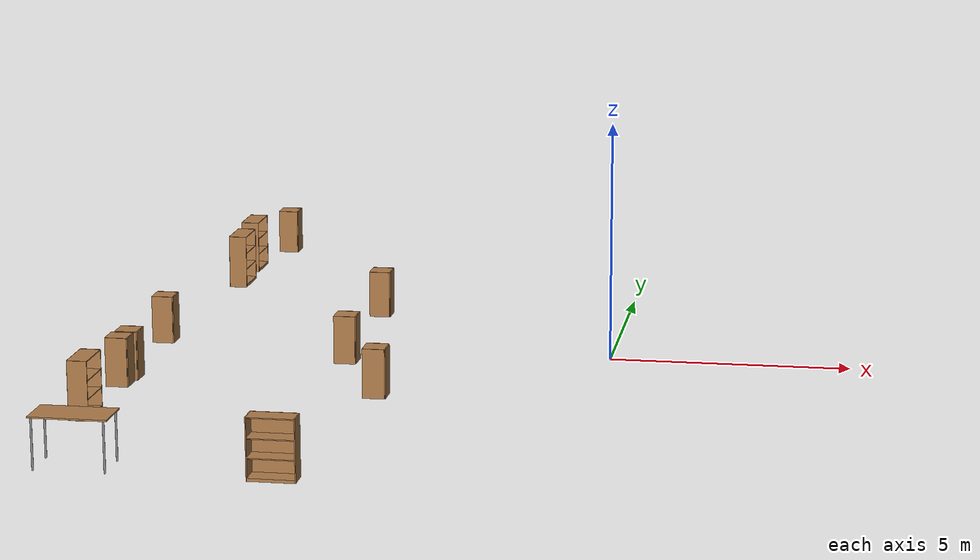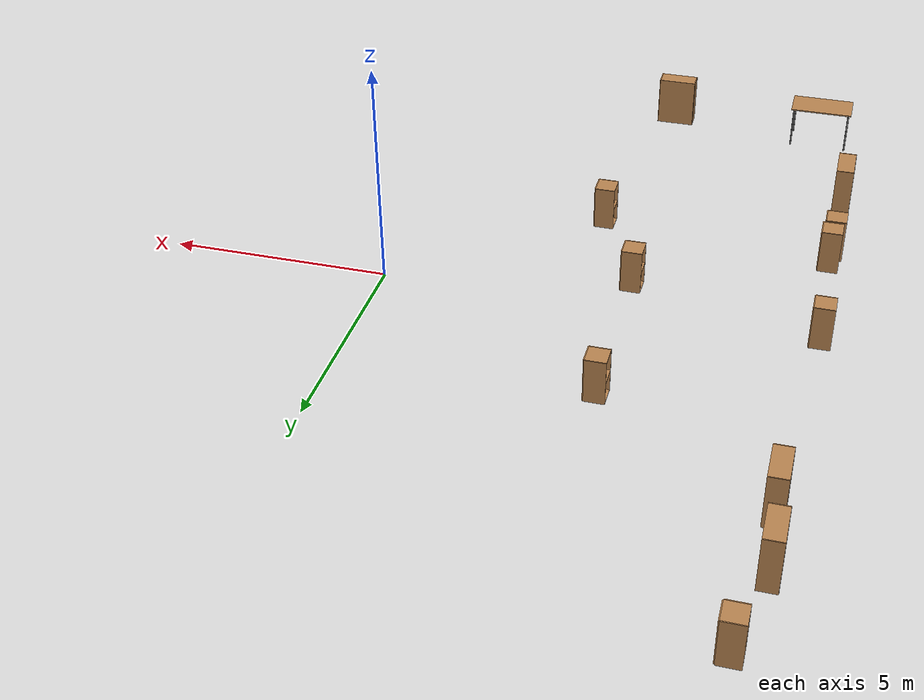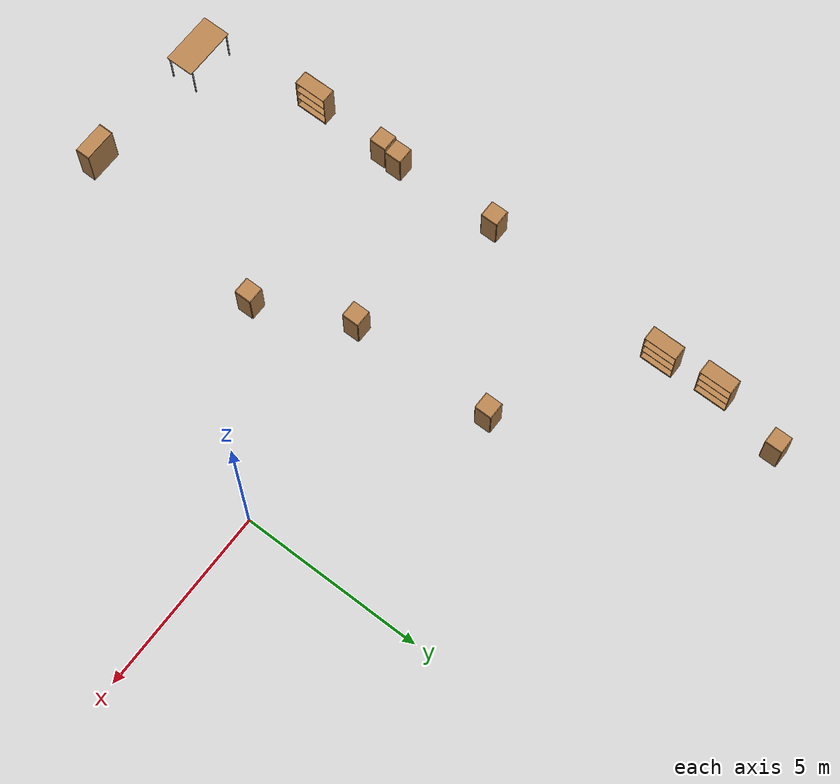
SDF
<sdf version="1.4">
 <world name="prepare">
  <model name="cabinet">
   <static>1</static>
   <link name="cabinet_bottom_plate">
    <inertial>
     <pose>0 0 -1 0 -0 0</pose>
     <inertia><ixx>2.05</ixx><ixy>0</ixy><ixz>0</ixz><iyy>2.05</iyy><iyz>0</iyz><izz>2.05</izz></inertia>
     <mass>25</mass>
    </inertial>
    <collision name="cabinet_bottom_plate_geom">
     <pose>0 0 0.01 0 -0 0</pose>
     <geometry><box><size>0.45 0.45 0.02</size></box></geometry>
    </collision>
    <visual name="cabinet_bottom_plate_geom_visual">
     <pose>0 0 0.01 0 -0 0</pose>
     <geometry><box><size>0.45 0.45 0.02</size></box></geometry>
     <material>
      <script><uri>file://media/materials/scripts/gazebo.material</uri><name>Gazebo/Wood</name></script>
     </material>
    </visual>
    <collision name="cabinet_bottom_plate_geom_cabinet_back_plate">
     <pose>0.235 0 0.51 0 -0 0</pose>
     <geometry><box><size>0.02 0.45 1.02</size></box></geometry>
    </collision>
    <visual name="cabinet_bottom_plate_geom_cabinet_back_plate_visual">
     <pose>0.235 0 0.51 0 -0 0</pose>
     <geometry><box><size>0.02 0.45 1.02</size></box></geometry>
     <material>
      <script><uri>file://media/materials/scripts/gazebo.material</uri><name>Gazebo/Wood</name></script>
     </material>
    </visual>
    <collision name="cabinet_bottom_plate_geom_cabinet_left_plate">
     <pose>0 0.235 0.51 0 -0 0</pose>
     <geometry><box><size>0.45 0.02 1.02</size></box></geometry>
    </collision>
    <visual name="cabinet_bottom_plate_geom_cabinet_left_plate_visual">
     <pose>0 0.235 0.51 0 -0 0</pose>
     <geometry><box><size>0.45 0.02 1.02</size></box></geometry>
     <material>
      <script><uri>file://media/materials/scripts/gazebo.material</uri><name>Gazebo/Wood</name></script>
     </material>
    </visual>
    <collision name="cabinet_bottom_plate_geom_cabinet_middle_plate">
     <pose>0 0 0.51 0 -0 0</pose>
     <geometry><box><size>0.45 0.45 0.02</size></box></geometry>
    </collision>
    <visual name="cabinet_bottom_plate_geom_cabinet_middle_plate_visual">
     <pose>0 0 0.51 0 -0 0</pose>
     <geometry><box><size>0.45 0.45 0.02</size></box></geometry>
     <material>
      <script><uri>file://media/materials/scripts/gazebo.material</uri><name>Gazebo/Wood</name></script>
     </material>
    </visual>
    <collision name="cabinet_bottom_plate_geom_cabinet_right_plate">
     <pose>0 -0.235 0.51 0 -0 0</pose>
     <geometry><box><size>0.45 0.02 1.02</size></box></geometry>
    </collision>
    <visual name="cabinet_bottom_plate_geom_cabinet_right_plate_visual">
     <pose>0 -0.235 0.51 0 -0 0</pose>
     <geometry><box><size>0.45 0.02 1.02</size></box></geometry>
     <material>
      <script><uri>file://media/materials/scripts/gazebo.material</uri><name>Gazebo/Wood</name></script>
     </material>
    </visual>
    <collision name="cabinet_bottom_plate_geom_cabinet_top_plate">
     <pose>0 0 1.01 0 -0 0</pose>
     <geometry><box><size>0.45 0.45 0.02</size></box></geometry>
    </collision>
    <visual name="cabinet_bottom_plate_geom_cabinet_top_plate_visual">
     <pose>0 0 1.01 0 -0 0</pose>
     <geometry><box><size>0.45 0.45 0.02</size></box></geometry>
     <material>
      <script><uri>file://media/materials/scripts/gazebo.material</uri><name>Gazebo/Wood</name></script>
     </material>
    </visual>
    <velocity_decay><linear>0</linear><angular>0</angular></velocity_decay>
   </link>
   <pose>-4.33134 -3.46856 0 0 -0 0</pose>
  </model>
  <model name="cabinet_2">
   <static>1</static>
   <link name="cabinet_bottom_plate">
    <inertial>
     <pose>0 0 -1 0 -0 0</pose>
     <inertia><ixx>2.05</ixx><ixy>0</ixy><ixz>0</ixz><iyy>2.05</iyy><iyz>0</iyz><izz>2.05</izz></inertia>
     <mass>25</mass>
    </inertial>
    <collision name="cabinet_bottom_plate_geom">
     <pose>0 0 0.01 0 -0 0</pose>
     <geometry><box><size>0.45 0.45 0.02</size></box></geometry>
    </collision>
    <visual name="cabinet_bottom_plate_geom_visual">
     <pose>0 0 0.01 0 -0 0</pose>
     <geometry><box><size>0.45 0.45 0.02</size></box></geometry>
     <material>
      <script><uri>file://media/materials/scripts/gazebo.material</uri><name>Gazebo/Wood</name></script>
     </material>
    </visual>
    <collision name="cabinet_bottom_plate_geom_cabinet_back_plate">
     <pose>0.235 0 0.51 0 -0 0</pose>
     <geometry><box><size>0.02 0.45 1.02</size></box></geometry>
    </collision>
    <visual name="cabinet_bottom_plate_geom_cabinet_back_plate_visual">
     <pose>0.235 0 0.51 0 -0 0</pose>
     <geometry><box><size>0.02 0.45 1.02</size></box></geometry>
     <material>
      <script><uri>file://media/materials/scripts/gazebo.material</uri><name>Gazebo/Wood</name></script>
     </material>
    </visual>
    <collision name="cabinet_bottom_plate_geom_cabinet_left_plate">
     <pose>0 0.235 0.51 0 -0 0</pose>
     <geometry><box><size>0.45 0.02 1.02</size></box></geometry>
    </collision>
    <visual name="cabinet_bottom_plate_geom_cabinet_left_plate_visual">
     <pose>0 0.235 0.51 0 -0 0</pose>
     <geometry><box><size>0.45 0.02 1.02</size></box></geometry>
     <material>
      <script><uri>file://media/materials/scripts/gazebo.material</uri><name>Gazebo/Wood</name></script>
     </material>
    </visual>
    <collision name="cabinet_bottom_plate_geom_cabinet_middle_plate">
     <pose>0 0 0.51 0 -0 0</pose>
     <geometry><box><size>0.45 0.45 0.02</size></box></geometry>
    </collision>
    <visual name="cabinet_bottom_plate_geom_cabinet_middle_plate_visual">
     <pose>0 0 0.51 0 -0 0</pose>
     <geometry><box><size>0.45 0.45 0.02</size></box></geometry>
     <material>
      <script><uri>file://media/materials/scripts/gazebo.material</uri><name>Gazebo/Wood</name></script>
     </material>
    </visual>
    <collision name="cabinet_bottom_plate_geom_cabinet_right_plate">
     <pose>0 -0.235 0.51 0 -0 0</pose>
     <geometry><box><size>0.45 0.02 1.02</size></box></geometry>
    </collision>
    <visual name="cabinet_bottom_plate_geom_cabinet_right_plate_visual">
     <pose>0 -0.235 0.51 0 -0 0</pose>
     <geometry><box><size>0.45 0.02 1.02</size></box></geometry>
     <material>
      <script><uri>file://media/materials/scripts/gazebo.material</uri><name>Gazebo/Wood</name></script>
     </material>
    </visual>
    <collision name="cabinet_bottom_plate_geom_cabinet_top_plate">
     <pose>0 0 1.01 0 -0 0</pose>
     <geometry><box><size>0.45 0.45 0.02</size></box></geometry>
    </collision>
    <visual name="cabinet_bottom_plate_geom_cabinet_top_plate_visual">
     <pose>0 0 1.01 0 -0 0</pose>
     <geometry><box><size>0.45 0.45 0.02</size></box></geometry>
     <material>
      <script><uri>file://media/materials/scripts/gazebo.material</uri><name>Gazebo/Wood</name></script>
     </material>
    </visual>
    <velocity_decay><linear>0</linear><angular>0</angular></velocity_decay>
   </link>
   <pose>-9 9 0 0 -0 0</pose>
  </model>
  <model name="table">
   <static>1</static>
   <link name="link">
    <collision name="surface">
     <pose>0 0 1 0 -0 0</pose>
     <geometry><box><size>1.5 0.8 0.03</size></box></geometry>
    </collision>
    <visual name="visual1">
     <pose>0 0 1 0 -0 0</pose>
     <geometry><box><size>1.5 0.8 0.03</size></box></geometry>
     <material>
      <script><uri>file://media/materials/scripts/gazebo.material</uri><name>Gazebo/Wood</name></script>
     </material>
    </visual>
    <collision name="front_left_leg">
     <pose>0.68 0.38 0.5 0 -0 0</pose>
     <geometry><cylinder><radius>0.02</radius><length>1</length></cylinder></geometry>
    </collision>
    <visual name="front_left_leg">
     <pose>0.68 0.38 0.5 0 -0 0</pose>
     <geometry><cylinder><radius>0.02</radius><length>1</length></cylinder></geometry>
     <material>
      <script><uri>file://media/materials/scripts/gazebo.material</uri><name>Gazebo/Grey</name></script>
     </material>
    </visual>
    <collision name="front_right_leg">
     <pose>0.68 -0.38 0.5 0 -0 0</pose>
     <geometry><cylinder><radius>0.02</radius><length>1</length></cylinder></geometry>
    </collision>
    <visual name="front_right_leg">
     <pose>0.68 -0.38 0.5 0 -0 0</pose>
     <geometry><cylinder><radius>0.02</radius><length>1</length></cylinder></geometry>
     <material>
      <script><uri>file://media/materials/scripts/gazebo.material</uri><name>Gazebo/Grey</name></script>
     </material>
    </visual>
    <collision name="back_right_leg">
     <pose>-0.68 -0.38 0.5 0 -0 0</pose>
     <geometry><cylinder><radius>0.02</radius><length>1</length></cylinder></geometry>
    </collision>
    <visual name="back_right_leg">
     <pose>-0.68 -0.38 0.5 0 -0 0</pose>
     <geometry><cylinder><radius>0.02</radius><length>1</length></cylinder></geometry>
     <material>
      <script><uri>file://media/materials/scripts/gazebo.material</uri><name>Gazebo/Grey</name></script>
     </material>
    </visual>
    <collision name="back_left_leg">
     <pose>-0.68 0.38 0.5 0 -0 0</pose>
     <geometry><cylinder><radius>0.02</radius><length>1</length></cylinder></geometry>
    </collision>
    <visual name="back_left_leg">
     <pose>-0.68 0.38 0.5 0 -0 0</pose>
     <geometry><cylinder><radius>0.02</radius><length>1</length></cylinder></geometry>
     <material>
      <script><uri>file://media/materials/scripts/gazebo.material</uri><name>Gazebo/Grey</name></script>
     </material>
    </visual>
    <velocity_decay><linear>0</linear><angular>0</angular></velocity_decay>
   </link>
   <pose>-8.84488 -8.84481 0 0 -0 0</pose>
  </model>
  <model name="bookshelf_4">
   <static>1</static>
   <link name="link">
    <inertial><mass>1</mass></inertial>
    <collision name="back">
     <pose>0 0.005 0.6 0 -0 0</pose>
     <geometry><box><size>0.9 0.01 1.2</size></box></geometry>
    </collision>
    <visual name="visual1">
     <pose>0 0.005 0.6 0 -0 0</pose>
     <geometry><box><size>0.9 0.01 1.2</size></box></geometry>
     <material>
      <script><uri>file://media/materials/scripts/gazebo.material</uri><name>Gazebo/Wood</name></script>
     </material>
    </visual>
    <collision name="left_side">
     <pose>0.45 -0.195 0.6 0 -0 0</pose>
     <geometry><box><size>0.02 0.4 1.2</size></box></geometry>
    </collision>
    <visual name="visual2">
     <pose>0.45 -0.195 0.6 0 -0 0</pose>
     <geometry><box><size>0.02 0.4 1.2</size></box></geometry>
     <material>
      <script><uri>file://media/materials/scripts/gazebo.material</uri><name>Gazebo/Wood</name></script>
     </material>
    </visual>
    <collision name="right_side">
     <pose>-0.45 -0.195 0.6 0 -0 0</pose>
     <geometry><box><size>0.02 0.4 1.2</size></box></geometry>
    </collision>
    <visual name="visual3">
     <pose>-0.45 -0.195 0.6 0 -0 0</pose>
     <geometry><box><size>0.02 0.4 1.2</size></box></geometry>
     <material>
      <script><uri>file://media/materials/scripts/gazebo.material</uri><name>Gazebo/Wood</name></script>
     </material>
    </visual>
    <collision name="bottom">
     <pose>0 -0.195 0.03 0 -0 0</pose>
     <geometry><box><size>0.88 0.4 0.06</size></box></geometry>
    </collision>
    <visual name="visual4">
     <pose>0 -0.195 0.03 0 -0 0</pose>
     <geometry><box><size>0.88 0.4 0.06</size></box></geometry>
     <material>
      <script><uri>file://media/materials/scripts/gazebo.material</uri><name>Gazebo/Wood</name></script>
     </material>
    </visual>
    <collision name="top">
     <pose>0 -0.195 1.19 0 -0 0</pose>
     <geometry><box><size>0.88 0.4 0.02</size></box></geometry>
    </collision>
    <visual name="visual5">
     <pose>0 -0.195 1.19 0 -0 0</pose>
     <geometry><box><size>0.88 0.4 0.02</size></box></geometry>
     <material>
      <script><uri>file://media/materials/scripts/gazebo.material</uri><name>Gazebo/Wood</name></script>
     </material>
    </visual>
    <collision name="low_shelf">
     <pose>0 -0.195 0.43 0 -0 0</pose>
     <geometry><box><size>0.88 0.4 0.02</size></box></geometry>
    </collision>
    <visual name="visual6">
     <pose>0 -0.195 0.43 0 -0 0</pose>
     <geometry><box><size>0.88 0.4 0.02</size></box></geometry>
     <material>
      <script><uri>file://media/materials/scripts/gazebo.material</uri><name>Gazebo/Wood</name></script>
     </material>
    </visual>
    <collision name="high_shelf">
     <pose>0 -0.195 0.8 0 -0 0</pose>
     <geometry><box><size>0.88 0.4 0.02</size></box></geometry>
    </collision>
    <visual name="visual7">
     <pose>0 -0.195 0.8 0 -0 0</pose>
     <geometry><box><size>0.88 0.4 0.02</size></box></geometry>
     <material>
      <script><uri>file://media/materials/scripts/gazebo.material</uri><name>Gazebo/Wood</name></script>
     </material>
    </visual>
    <velocity_decay><linear>0</linear><angular>0</angular></velocity_decay>
   </link>
   <pose>-5.07565 -8.87222 0 0 -0 0</pose>
  </model>
  <model name="bookshelf_6">
   <static>1</static>
   <link name="link">
    <inertial><mass>1</mass></inertial>
    <collision name="back">
     <pose>0 0.005 0.6 0 -0 0</pose>
     <geometry><box><size>0.9 0.01 1.2</size></box></geometry>
    </collision>
    <visual name="visual1">
     <pose>0 0.005 0.6 0 -0 0</pose>
     <geometry><box><size>0.9 0.01 1.2</size></box></geometry>
     <material>
      <script><uri>file://media/materials/scripts/gazebo.material</uri><name>Gazebo/Wood</name></script>
     </material>
    </visual>
    <collision name="left_side">
     <pose>0.45 -0.195 0.6 0 -0 0</pose>
     <geometry><box><size>0.02 0.4 1.2</size></box></geometry>
    </collision>
    <visual name="visual2">
     <pose>0.45 -0.195 0.6 0 -0 0</pose>
     <geometry><box><size>0.02 0.4 1.2</size></box></geometry>
     <material>
      <script><uri>file://media/materials/scripts/gazebo.material</uri><name>Gazebo/Wood</name></script>
     </material>
    </visual>
    <collision name="right_side">
     <pose>-0.45 -0.195 0.6 0 -0 0</pose>
     <geometry><box><size>0.02 0.4 1.2</size></box></geometry>
    </collision>
    <visual name="visual3">
     <pose>-0.45 -0.195 0.6 0 -0 0</pose>
     <geometry><box><size>0.02 0.4 1.2</size></box></geometry>
     <material>
      <script><uri>file://media/materials/scripts/gazebo.material</uri><name>Gazebo/Wood</name></script>
     </material>
    </visual>
    <collision name="bottom">
     <pose>0 -0.195 0.03 0 -0 0</pose>
     <geometry><box><size>0.88 0.4 0.06</size></box></geometry>
    </collision>
    <visual name="visual4">
     <pose>0 -0.195 0.03 0 -0 0</pose>
     <geometry><box><size>0.88 0.4 0.06</size></box></geometry>
     <material>
      <script><uri>file://media/materials/scripts/gazebo.material</uri><name>Gazebo/Wood</name></script>
     </material>
    </visual>
    <collision name="top">
     <pose>0 -0.195 1.19 0 -0 0</pose>
     <geometry><box><size>0.88 0.4 0.02</size></box></geometry>
    </collision>
    <visual name="visual5">
     <pose>0 -0.195 1.19 0 -0 0</pose>
     <geometry><box><size>0.88 0.4 0.02</size></box></geometry>
     <material>
      <script><uri>file://media/materials/scripts/gazebo.material</uri><name>Gazebo/Wood</name></script>
     </material>
    </visual>
    <collision name="low_shelf">
     <pose>0 -0.195 0.43 0 -0 0</pose>
     <geometry><box><size>0.88 0.4 0.02</size></box></geometry>
    </collision>
    <visual name="visual6">
     <pose>0 -0.195 0.43 0 -0 0</pose>
     <geometry><box><size>0.88 0.4 0.02</size></box></geometry>
     <material>
      <script><uri>file://media/materials/scripts/gazebo.material</uri><name>Gazebo/Wood</name></script>
     </material>
    </visual>
    <collision name="high_shelf">
     <pose>0 -0.195 0.8 0 -0 0</pose>
     <geometry><box><size>0.88 0.4 0.02</size></box></geometry>
    </collision>
    <visual name="visual7">
     <pose>0 -0.195 0.8 0 -0 0</pose>
     <geometry><box><size>0.88 0.4 0.02</size></box></geometry>
     <material>
      <script><uri>file://media/materials/scripts/gazebo.material</uri><name>Gazebo/Wood</name></script>
     </material>
    </visual>
    <velocity_decay><linear>0</linear><angular>0</angular></velocity_decay>
   </link>
   <pose>-9.59988 7 0 0 -0 1.5708</pose>
  </model>
  <model name="bookshelf_7">
   <static>1</static>
   <link name="link">
    <inertial><mass>1</mass></inertial>
    <collision name="back">
     <pose>0 0.005 0.6 0 -0 0</pose>
     <geometry><box><size>0.9 0.01 1.2</size></box></geometry>
    </collision>
    <visual name="visual1">
     <pose>0 0.005 0.6 0 -0 0</pose>
     <geometry><box><size>0.9 0.01 1.2</size></box></geometry>
     <material>
      <script><uri>file://media/materials/scripts/gazebo.material</uri><name>Gazebo/Wood</name></script>
     </material>
    </visual>
    <collision name="left_side">
     <pose>0.45 -0.195 0.6 0 -0 0</pose>
     <geometry><box><size>0.02 0.4 1.2</size></box></geometry>
    </collision>
    <visual name="visual2">
     <pose>0.45 -0.195 0.6 0 -0 0</pose>
     <geometry><box><size>0.02 0.4 1.2</size></box></geometry>
     <material>
      <script><uri>file://media/materials/scripts/gazebo.material</uri><name>Gazebo/Wood</name></script>
     </material>
    </visual>
    <collision name="right_side">
     <pose>-0.45 -0.195 0.6 0 -0 0</pose>
     <geometry><box><size>0.02 0.4 1.2</size></box></geometry>
    </collision>
    <visual name="visual3">
     <pose>-0.45 -0.195 0.6 0 -0 0</pose>
     <geometry><box><size>0.02 0.4 1.2</size></box></geometry>
     <material>
      <script><uri>file://media/materials/scripts/gazebo.material</uri><name>Gazebo/Wood</name></script>
     </material>
    </visual>
    <collision name="bottom">
     <pose>0 -0.195 0.03 0 -0 0</pose>
     <geometry><box><size>0.88 0.4 0.06</size></box></geometry>
    </collision>
    <visual name="visual4">
     <pose>0 -0.195 0.03 0 -0 0</pose>
     <geometry><box><size>0.88 0.4 0.06</size></box></geometry>
     <material>
      <script><uri>file://media/materials/scripts/gazebo.material</uri><name>Gazebo/Wood</name></script>
     </material>
    </visual>
    <collision name="top">
     <pose>0 -0.195 1.19 0 -0 0</pose>
     <geometry><box><size>0.88 0.4 0.02</size></box></geometry>
    </collision>
    <visual name="visual5">
     <pose>0 -0.195 1.19 0 -0 0</pose>
     <geometry><box><size>0.88 0.4 0.02</size></box></geometry>
     <material>
      <script><uri>file://media/materials/scripts/gazebo.material</uri><name>Gazebo/Wood</name></script>
     </material>
    </visual>
    <collision name="low_shelf">
     <pose>0 -0.195 0.43 0 -0 0</pose>
     <geometry><box><size>0.88 0.4 0.02</size></box></geometry>
    </collision>
    <visual name="visual6">
     <pose>0 -0.195 0.43 0 -0 0</pose>
     <geometry><box><size>0.88 0.4 0.02</size></box></geometry>
     <material>
      <script><uri>file://media/materials/scripts/gazebo.material</uri><name>Gazebo/Wood</name></script>
     </material>
    </visual>
    <collision name="high_shelf">
     <pose>0 -0.195 0.8 0 -0 0</pose>
     <geometry><box><size>0.88 0.4 0.02</size></box></geometry>
    </collision>
    <visual name="visual7">
     <pose>0 -0.195 0.8 0 -0 0</pose>
     <geometry><box><size>0.88 0.4 0.02</size></box></geometry>
     <material>
      <script><uri>file://media/materials/scripts/gazebo.material</uri><name>Gazebo/Wood</name></script>
     </material>
    </visual>
    <velocity_decay><linear>0</linear><angular>0</angular></velocity_decay>
   </link>
   <pose>-9.50921 5.4476 0 0 -0 1.5708</pose>
  </model>
  <model name="bookshelf_8">
   <static>1</static>
   <link name="link">
    <inertial><mass>1</mass></inertial>
    <collision name="back">
     <pose>0 0.005 0.6 0 -0 0</pose>
     <geometry><box><size>0.9 0.01 1.2</size></box></geometry>
    </collision>
    <visual name="visual1">
     <pose>0 0.005 0.6 0 -0 0</pose>
     <geometry><box><size>0.9 0.01 1.2</size></box></geometry>
     <material>
      <script><uri>file://media/materials/scripts/gazebo.material</uri><name>Gazebo/Wood</name></script>
     </material>
    </visual>
    <collision name="left_side">
     <pose>0.45 -0.195 0.6 0 -0 0</pose>
     <geometry><box><size>0.02 0.4 1.2</size></box></geometry>
    </collision>
    <visual name="visual2">
     <pose>0.45 -0.195 0.6 0 -0 0</pose>
     <geometry><box><size>0.02 0.4 1.2</size></box></geometry>
     <material>
      <script><uri>file://media/materials/scripts/gazebo.material</uri><name>Gazebo/Wood</name></script>
     </material>
    </visual>
    <collision name="right_side">
     <pose>-0.45 -0.195 0.6 0 -0 0</pose>
     <geometry><box><size>0.02 0.4 1.2</size></box></geometry>
    </collision>
    <visual name="visual3">
     <pose>-0.45 -0.195 0.6 0 -0 0</pose>
     <geometry><box><size>0.02 0.4 1.2</size></box></geometry>
     <material>
      <script><uri>file://media/materials/scripts/gazebo.material</uri><name>Gazebo/Wood</name></script>
     </material>
    </visual>
    <collision name="bottom">
     <pose>0 -0.195 0.03 0 -0 0</pose>
     <geometry><box><size>0.88 0.4 0.06</size></box></geometry>
    </collision>
    <visual name="visual4">
     <pose>0 -0.195 0.03 0 -0 0</pose>
     <geometry><box><size>0.88 0.4 0.06</size></box></geometry>
     <material>
      <script><uri>file://media/materials/scripts/gazebo.material</uri><name>Gazebo/Wood</name></script>
     </material>
    </visual>
    <collision name="top">
     <pose>0 -0.195 1.19 0 -0 0</pose>
     <geometry><box><size>0.88 0.4 0.02</size></box></geometry>
    </collision>
    <visual name="visual5">
     <pose>0 -0.195 1.19 0 -0 0</pose>
     <geometry><box><size>0.88 0.4 0.02</size></box></geometry>
     <material>
      <script><uri>file://media/materials/scripts/gazebo.material</uri><name>Gazebo/Wood</name></script>
     </material>
    </visual>
    <collision name="low_shelf">
     <pose>0 -0.195 0.43 0 -0 0</pose>
     <geometry><box><size>0.88 0.4 0.02</size></box></geometry>
    </collision>
    <visual name="visual6">
     <pose>0 -0.195 0.43 0 -0 0</pose>
     <geometry><box><size>0.88 0.4 0.02</size></box></geometry>
     <material>
      <script><uri>file://media/materials/scripts/gazebo.material</uri><name>Gazebo/Wood</name></script>
     </material>
    </visual>
    <collision name="high_shelf">
     <pose>0 -0.195 0.8 0 -0 0</pose>
     <geometry><box><size>0.88 0.4 0.02</size></box></geometry>
    </collision>
    <visual name="visual7">
     <pose>0 -0.195 0.8 0 -0 0</pose>
     <geometry><box><size>0.88 0.4 0.02</size></box></geometry>
     <material>
      <script><uri>file://media/materials/scripts/gazebo.material</uri><name>Gazebo/Wood</name></script>
     </material>
    </visual>
    <velocity_decay><linear>0</linear><angular>0</angular></velocity_decay>
   </link>
   <pose>-9.85376 -5.64821 0 0 -0 1.5708</pose>
  </model>
  <model name="cabinet_9">
   <static>1</static>
   <link name="cabinet_bottom_plate">
    <inertial>
     <pose>0 0 -1 0 -0 0</pose>
     <inertia><ixx>2.05</ixx><ixy>0</ixy><ixz>0</ixz><iyy>2.05</iyy><iyz>0</iyz><izz>2.05</izz></inertia>
     <mass>25</mass>
    </inertial>
    <collision name="cabinet_bottom_plate_geom">
     <pose>0 0 0.01 0 -0 0</pose>
     <geometry><box><size>0.45 0.45 0.02</size></box></geometry>
    </collision>
    <visual name="cabinet_bottom_plate_geom_visual">
     <pose>0 0 0.01 0 -0 0</pose>
     <geometry><box><size>0.45 0.45 0.02</size></box></geometry>
     <material>
      <script><uri>file://media/materials/scripts/gazebo.material</uri><name>Gazebo/Wood</name></script>
     </material>
    </visual>
    <collision name="cabinet_bottom_plate_geom_cabinet_back_plate">
     <pose>0.235 0 0.51 0 -0 0</pose>
     <geometry><box><size>0.02 0.45 1.02</size></box></geometry>
    </collision>
    <visual name="cabinet_bottom_plate_geom_cabinet_back_plate_visual">
     <pose>0.235 0 0.51 0 -0 0</pose>
     <geometry><box><size>0.02 0.45 1.02</size></box></geometry>
     <material>
      <script><uri>file://media/materials/scripts/gazebo.material</uri><name>Gazebo/Wood</name></script>
     </material>
    </visual>
    <collision name="cabinet_bottom_plate_geom_cabinet_left_plate">
     <pose>0 0.235 0.51 0 -0 0</pose>
     <geometry><box><size>0.45 0.02 1.02</size></box></geometry>
    </collision>
    <visual name="cabinet_bottom_plate_geom_cabinet_left_plate_visual">
     <pose>0 0.235 0.51 0 -0 0</pose>
     <geometry><box><size>0.45 0.02 1.02</size></box></geometry>
     <material>
      <script><uri>file://media/materials/scripts/gazebo.material</uri><name>Gazebo/Wood</name></script>
     </material>
    </visual>
    <collision name="cabinet_bottom_plate_geom_cabinet_middle_plate">
     <pose>0 0 0.51 0 -0 0</pose>
     <geometry><box><size>0.45 0.45 0.02</size></box></geometry>
    </collision>
    <visual name="cabinet_bottom_plate_geom_cabinet_middle_plate_visual">
     <pose>0 0 0.51 0 -0 0</pose>
     <geometry><box><size>0.45 0.45 0.02</size></box></geometry>
     <material>
      <script><uri>file://media/materials/scripts/gazebo.material</uri><name>Gazebo/Wood</name></script>
     </material>
    </visual>
    <collision name="cabinet_bottom_plate_geom_cabinet_right_plate">
     <pose>0 -0.235 0.51 0 -0 0</pose>
     <geometry><box><size>0.45 0.02 1.02</size></box></geometry>
    </collision>
    <visual name="cabinet_bottom_plate_geom_cabinet_right_plate_visual">
     <pose>0 -0.235 0.51 0 -0 0</pose>
     <geometry><box><size>0.45 0.02 1.02</size></box></geometry>
     <material>
      <script><uri>file://media/materials/scripts/gazebo.material</uri><name>Gazebo/Wood</name></script>
     </material>
    </visual>
    <collision name="cabinet_bottom_plate_geom_cabinet_top_plate">
     <pose>0 0 1.01 0 -0 0</pose>
     <geometry><box><size>0.45 0.45 0.02</size></box></geometry>
    </collision>
    <visual name="cabinet_bottom_plate_geom_cabinet_top_plate_visual">
     <pose>0 0 1.01 0 -0 0</pose>
     <geometry><box><size>0.45 0.45 0.02</size></box></geometry>
     <material>
      <script><uri>file://media/materials/scripts/gazebo.material</uri><name>Gazebo/Wood</name></script>
     </material>
    </visual>
    <velocity_decay><linear>0</linear><angular>0</angular></velocity_decay>
   </link>
   <pose>-9.63419 -3.42527 0 0 -0 0</pose>
  </model>
  <model name="cabinet_10">
   <static>1</static>
   <link name="cabinet_bottom_plate">
    <inertial>
     <pose>0 0 -1 0 -0 0</pose>
     <inertia><ixx>2.05</ixx><ixy>0</ixy><ixz>0</ixz><iyy>2.05</iyy><iyz>0</iyz><izz>2.05</izz></inertia>
     <mass>25</mass>
    </inertial>
    <collision name="cabinet_bottom_plate_geom">
     <pose>0 0 0.01 0 -0 0</pose>
     <geometry><box><size>0.45 0.45 0.02</size></box></geometry>
    </collision>
    <visual name="cabinet_bottom_plate_geom_visual">
     <pose>0 0 0.01 0 -0 0</pose>
     <geometry><box><size>0.45 0.45 0.02</size></box></geometry>
     <material>
      <script><uri>file://media/materials/scripts/gazebo.material</uri><name>Gazebo/Wood</name></script>
     </material>
    </visual>
    <collision name="cabinet_bottom_plate_geom_cabinet_back_plate">
     <pose>0.235 0 0.51 0 -0 0</pose>
     <geometry><box><size>0.02 0.45 1.02</size></box></geometry>
    </collision>
    <visual name="cabinet_bottom_plate_geom_cabinet_back_plate_visual">
     <pose>0.235 0 0.51 0 -0 0</pose>
     <geometry><box><size>0.02 0.45 1.02</size></box></geometry>
     <material>
      <script><uri>file://media/materials/scripts/gazebo.material</uri><name>Gazebo/Wood</name></script>
     </material>
    </visual>
    <collision name="cabinet_bottom_plate_geom_cabinet_left_plate">
     <pose>0 0.235 0.51 0 -0 0</pose>
     <geometry><box><size>0.45 0.02 1.02</size></box></geometry>
    </collision>
    <visual name="cabinet_bottom_plate_geom_cabinet_left_plate_visual">
     <pose>0 0.235 0.51 0 -0 0</pose>
     <geometry><box><size>0.45 0.02 1.02</size></box></geometry>
     <material>
      <script><uri>file://media/materials/scripts/gazebo.material</uri><name>Gazebo/Wood</name></script>
     </material>
    </visual>
    <collision name="cabinet_bottom_plate_geom_cabinet_middle_plate">
     <pose>0 0 0.51 0 -0 0</pose>
     <geometry><box><size>0.45 0.45 0.02</size></box></geometry>
    </collision>
    <visual name="cabinet_bottom_plate_geom_cabinet_middle_plate_visual">
     <pose>0 0 0.51 0 -0 0</pose>
     <geometry><box><size>0.45 0.45 0.02</size></box></geometry>
     <material>
      <script><uri>file://media/materials/scripts/gazebo.material</uri><name>Gazebo/Wood</name></script>
     </material>
    </visual>
    <collision name="cabinet_bottom_plate_geom_cabinet_right_plate">
     <pose>0 -0.235 0.51 0 -0 0</pose>
     <geometry><box><size>0.45 0.02 1.02</size></box></geometry>
    </collision>
    <visual name="cabinet_bottom_plate_geom_cabinet_right_plate_visual">
     <pose>0 -0.235 0.51 0 -0 0</pose>
     <geometry><box><size>0.45 0.02 1.02</size></box></geometry>
     <material>
      <script><uri>file://media/materials/scripts/gazebo.material</uri><name>Gazebo/Wood</name></script>
     </material>
    </visual>
    <collision name="cabinet_bottom_plate_geom_cabinet_top_plate">
     <pose>0 0 1.01 0 -0 0</pose>
     <geometry><box><size>0.45 0.45 0.02</size></box></geometry>
    </collision>
    <visual name="cabinet_bottom_plate_geom_cabinet_top_plate_visual">
     <pose>0 0 1.01 0 -0 0</pose>
     <geometry><box><size>0.45 0.45 0.02</size></box></geometry>
     <material>
      <script><uri>file://media/materials/scripts/gazebo.material</uri><name>Gazebo/Wood</name></script>
     </material>
    </visual>
    <velocity_decay><linear>0</linear><angular>0</angular></velocity_decay>
   </link>
   <pose>-9.58258 -2.90092 0 0 -0 0</pose>
  </model>
  <model name="cabinet_11">
   <static>1</static>
   <link name="cabinet_bottom_plate">
    <inertial>
     <pose>0 0 -1 0 -0 0</pose>
     <inertia><ixx>2.05</ixx><ixy>0</ixy><ixz>0</ixz><iyy>2.05</iyy><iyz>0</iyz><izz>2.05</izz></inertia>
     <mass>25</mass>
    </inertial>
    <collision name="cabinet_bottom_plate_geom">
     <pose>0 0 0.01 0 -0 0</pose>
     <geometry><box><size>0.45 0.45 0.02</size></box></geometry>
    </collision>
    <visual name="cabinet_bottom_plate_geom_visual">
     <pose>0 0 0.01 0 -0 0</pose>
     <geometry><box><size>0.45 0.45 0.02</size></box></geometry>
     <material>
      <script><uri>file://media/materials/scripts/gazebo.material</uri><name>Gazebo/Wood</name></script>
     </material>
    </visual>
    <collision name="cabinet_bottom_plate_geom_cabinet_back_plate">
     <pose>0.235 0 0.51 0 -0 0</pose>
     <geometry><box><size>0.02 0.45 1.02</size></box></geometry>
    </collision>
    <visual name="cabinet_bottom_plate_geom_cabinet_back_plate_visual">
     <pose>0.235 0 0.51 0 -0 0</pose>
     <geometry><box><size>0.02 0.45 1.02</size></box></geometry>
     <material>
      <script><uri>file://media/materials/scripts/gazebo.material</uri><name>Gazebo/Wood</name></script>
     </material>
    </visual>
    <collision name="cabinet_bottom_plate_geom_cabinet_left_plate">
     <pose>0 0.235 0.51 0 -0 0</pose>
     <geometry><box><size>0.45 0.02 1.02</size></box></geometry>
    </collision>
    <visual name="cabinet_bottom_plate_geom_cabinet_left_plate_visual">
     <pose>0 0.235 0.51 0 -0 0</pose>
     <geometry><box><size>0.45 0.02 1.02</size></box></geometry>
     <material>
      <script><uri>file://media/materials/scripts/gazebo.material</uri><name>Gazebo/Wood</name></script>
     </material>
    </visual>
    <collision name="cabinet_bottom_plate_geom_cabinet_middle_plate">
     <pose>0 0 0.51 0 -0 0</pose>
     <geometry><box><size>0.45 0.45 0.02</size></box></geometry>
    </collision>
    <visual name="cabinet_bottom_plate_geom_cabinet_middle_plate_visual">
     <pose>0 0 0.51 0 -0 0</pose>
     <geometry><box><size>0.45 0.45 0.02</size></box></geometry>
     <material>
      <script><uri>file://media/materials/scripts/gazebo.material</uri><name>Gazebo/Wood</name></script>
     </material>
    </visual>
    <collision name="cabinet_bottom_plate_geom_cabinet_right_plate">
     <pose>0 -0.235 0.51 0 -0 0</pose>
     <geometry><box><size>0.45 0.02 1.02</size></box></geometry>
    </collision>
    <visual name="cabinet_bottom_plate_geom_cabinet_right_plate_visual">
     <pose>0 -0.235 0.51 0 -0 0</pose>
     <geometry><box><size>0.45 0.02 1.02</size></box></geometry>
     <material>
      <script><uri>file://media/materials/scripts/gazebo.material</uri><name>Gazebo/Wood</name></script>
     </material>
    </visual>
    <collision name="cabinet_bottom_plate_geom_cabinet_top_plate">
     <pose>0 0 1.01 0 -0 0</pose>
     <geometry><box><size>0.45 0.45 0.02</size></box></geometry>
    </collision>
    <visual name="cabinet_bottom_plate_geom_cabinet_top_plate_visual">
     <pose>0 0 1.01 0 -0 0</pose>
     <geometry><box><size>0.45 0.45 0.02</size></box></geometry>
     <material>
      <script><uri>file://media/materials/scripts/gazebo.material</uri><name>Gazebo/Wood</name></script>
     </material>
    </visual>
    <velocity_decay><linear>0</linear><angular>0</angular></velocity_decay>
   </link>
   <pose>-9.66545 0.065476 0 0 -0 0</pose>
  </model>
  <model name="cabinet_12">
   <static>1</static>
   <link name="cabinet_bottom_plate">
    <inertial>
     <pose>0 0 -1 0 -0 0</pose>
     <inertia><ixx>2.05</ixx><ixy>0</ixy><ixz>0</ixz><iyy>2.05</iyy><iyz>0</iyz><izz>2.05</izz></inertia>
     <mass>25</mass>
    </inertial>
    <collision name="cabinet_bottom_plate_geom">
     <pose>0 0 0.01 0 -0 0</pose>
     <geometry><box><size>0.45 0.45 0.02</size></box></geometry>
    </collision>
    <visual name="cabinet_bottom_plate_geom_visual">
     <pose>0 0 0.01 0 -0 0</pose>
     <geometry><box><size>0.45 0.45 0.02</size></box></geometry>
     <material>
      <script><uri>file://media/materials/scripts/gazebo.material</uri><name>Gazebo/Wood</name></script>
     </material>
    </visual>
    <collision name="cabinet_bottom_plate_geom_cabinet_back_plate">
     <pose>0.235 0 0.51 0 -0 0</pose>
     <geometry><box><size>0.02 0.45 1.02</size></box></geometry>
    </collision>
    <visual name="cabinet_bottom_plate_geom_cabinet_back_plate_visual">
     <pose>0.235 0 0.51 0 -0 0</pose>
     <geometry><box><size>0.02 0.45 1.02</size></box></geometry>
     <material>
      <script><uri>file://media/materials/scripts/gazebo.material</uri><name>Gazebo/Wood</name></script>
     </material>
    </visual>
    <collision name="cabinet_bottom_plate_geom_cabinet_left_plate">
     <pose>0 0.235 0.51 0 -0 0</pose>
     <geometry><box><size>0.45 0.02 1.02</size></box></geometry>
    </collision>
    <visual name="cabinet_bottom_plate_geom_cabinet_left_plate_visual">
     <pose>0 0.235 0.51 0 -0 0</pose>
     <geometry><box><size>0.45 0.02 1.02</size></box></geometry>
     <material>
      <script><uri>file://media/materials/scripts/gazebo.material</uri><name>Gazebo/Wood</name></script>
     </material>
    </visual>
    <collision name="cabinet_bottom_plate_geom_cabinet_middle_plate">
     <pose>0 0 0.51 0 -0 0</pose>
     <geometry><box><size>0.45 0.45 0.02</size></box></geometry>
    </collision>
    <visual name="cabinet_bottom_plate_geom_cabinet_middle_plate_visual">
     <pose>0 0 0.51 0 -0 0</pose>
     <geometry><box><size>0.45 0.45 0.02</size></box></geometry>
     <material>
      <script><uri>file://media/materials/scripts/gazebo.material</uri><name>Gazebo/Wood</name></script>
     </material>
    </visual>
    <collision name="cabinet_bottom_plate_geom_cabinet_right_plate">
     <pose>0 -0.235 0.51 0 -0 0</pose>
     <geometry><box><size>0.45 0.02 1.02</size></box></geometry>
    </collision>
    <visual name="cabinet_bottom_plate_geom_cabinet_right_plate_visual">
     <pose>0 -0.235 0.51 0 -0 0</pose>
     <geometry><box><size>0.45 0.02 1.02</size></box></geometry>
     <material>
      <script><uri>file://media/materials/scripts/gazebo.material</uri><name>Gazebo/Wood</name></script>
     </material>
    </visual>
    <collision name="cabinet_bottom_plate_geom_cabinet_top_plate">
     <pose>0 0 1.01 0 -0 0</pose>
     <geometry><box><size>0.45 0.45 0.02</size></box></geometry>
    </collision>
    <visual name="cabinet_bottom_plate_geom_cabinet_top_plate_visual">
     <pose>0 0 1.01 0 -0 0</pose>
     <geometry><box><size>0.45 0.45 0.02</size></box></geometry>
     <material>
      <script><uri>file://media/materials/scripts/gazebo.material</uri><name>Gazebo/Wood</name></script>
     </material>
    </visual>
    <velocity_decay><linear>0</linear><angular>0</angular></velocity_decay>
   </link>
   <pose>-5.447 -1 0 0 -0 0</pose>
  </model>
  <model name="cabinet_13">
   <static>1</static>
   <link name="cabinet_bottom_plate">
    <inertial>
     <pose>0 0 -1 0 -0 0</pose>
     <inertia><ixx>2.05</ixx><ixy>0</ixy><ixz>0</ixz><iyy>2.05</iyy><iyz>0</iyz><izz>2.05</izz></inertia>
     <mass>25</mass>
    </inertial>
    <collision name="cabinet_bottom_plate_geom">
     <pose>0 0 0.01 0 -0 0</pose>
     <geometry><box><size>0.45 0.45 0.02</size></box></geometry>
    </collision>
    <visual name="cabinet_bottom_plate_geom_visual">
     <pose>0 0 0.01 0 -0 0</pose>
     <geometry><box><size>0.45 0.45 0.02</size></box></geometry>
     <material>
      <script><uri>file://media/materials/scripts/gazebo.material</uri><name>Gazebo/Wood</name></script>
     </material>
    </visual>
    <collision name="cabinet_bottom_plate_geom_cabinet_back_plate">
     <pose>0.235 0 0.51 0 -0 0</pose>
     <geometry><box><size>0.02 0.45 1.02</size></box></geometry>
    </collision>
    <visual name="cabinet_bottom_plate_geom_cabinet_back_plate_visual">
     <pose>0.235 0 0.51 0 -0 0</pose>
     <geometry><box><size>0.02 0.45 1.02</size></box></geometry>
     <material>
      <script><uri>file://media/materials/scripts/gazebo.material</uri><name>Gazebo/Wood</name></script>
     </material>
    </visual>
    <collision name="cabinet_bottom_plate_geom_cabinet_left_plate">
     <pose>0 0.235 0.51 0 -0 0</pose>
     <geometry><box><size>0.45 0.02 1.02</size></box></geometry>
    </collision>
    <visual name="cabinet_bottom_plate_geom_cabinet_left_plate_visual">
     <pose>0 0.235 0.51 0 -0 0</pose>
     <geometry><box><size>0.45 0.02 1.02</size></box></geometry>
     <material>
      <script><uri>file://media/materials/scripts/gazebo.material</uri><name>Gazebo/Wood</name></script>
     </material>
    </visual>
    <collision name="cabinet_bottom_plate_geom_cabinet_middle_plate">
     <pose>0 0 0.51 0 -0 0</pose>
     <geometry><box><size>0.45 0.45 0.02</size></box></geometry>
    </collision>
    <visual name="cabinet_bottom_plate_geom_cabinet_middle_plate_visual">
     <pose>0 0 0.51 0 -0 0</pose>
     <geometry><box><size>0.45 0.45 0.02</size></box></geometry>
     <material>
      <script><uri>file://media/materials/scripts/gazebo.material</uri><name>Gazebo/Wood</name></script>
     </material>
    </visual>
    <collision name="cabinet_bottom_plate_geom_cabinet_right_plate">
     <pose>0 -0.235 0.51 0 -0 0</pose>
     <geometry><box><size>0.45 0.02 1.02</size></box></geometry>
    </collision>
    <visual name="cabinet_bottom_plate_geom_cabinet_right_plate_visual">
     <pose>0 -0.235 0.51 0 -0 0</pose>
     <geometry><box><size>0.45 0.02 1.02</size></box></geometry>
     <material>
      <script><uri>file://media/materials/scripts/gazebo.material</uri><name>Gazebo/Wood</name></script>
     </material>
    </visual>
    <collision name="cabinet_bottom_plate_geom_cabinet_top_plate">
     <pose>0 0 1.01 0 -0 0</pose>
     <geometry><box><size>0.45 0.45 0.02</size></box></geometry>
    </collision>
    <visual name="cabinet_bottom_plate_geom_cabinet_top_plate_visual">
     <pose>0 0 1.01 0 -0 0</pose>
     <geometry><box><size>0.45 0.45 0.02</size></box></geometry>
     <material>
      <script><uri>file://media/materials/scripts/gazebo.material</uri><name>Gazebo/Wood</name></script>
     </material>
    </visual>
    <velocity_decay><linear>0</linear><angular>0</angular></velocity_decay>
   </link>
   <pose>-5.50043 3 0 0 -0 0</pose>
  </model>
 </world>
</sdf>
